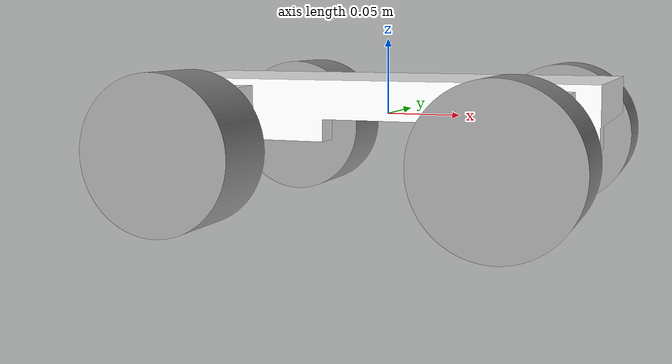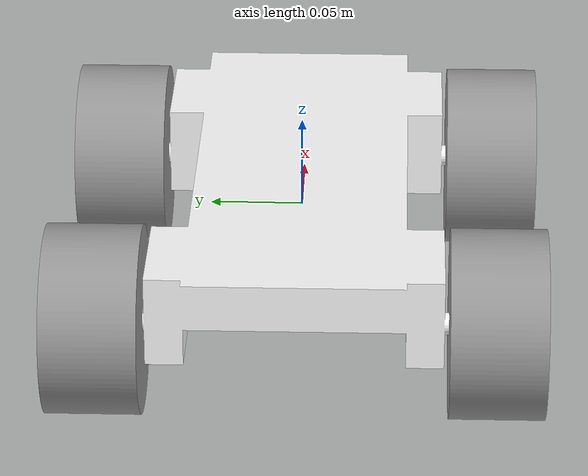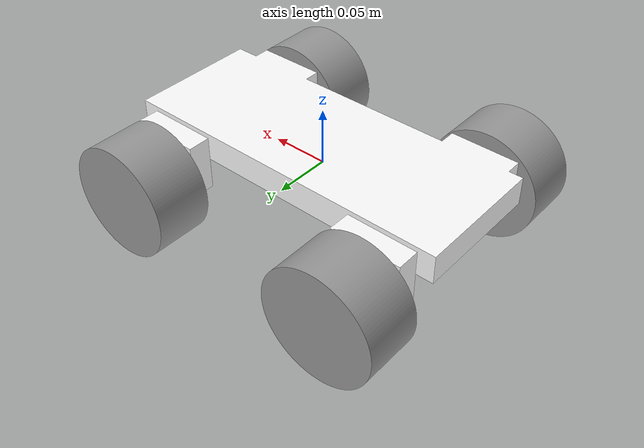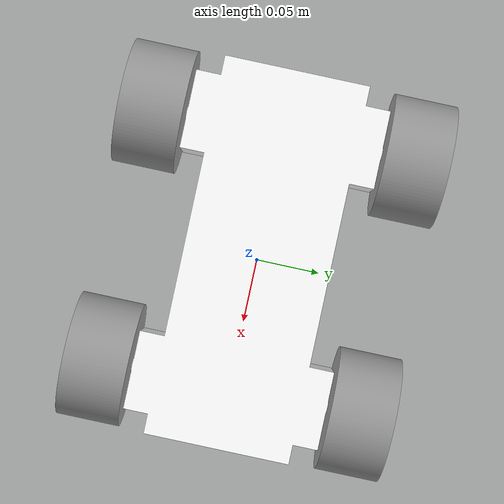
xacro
<?xml version="1.0"?>
<robot xmlns:xacro="http://www.ros.org/wiki/xacro">

    <xacro:macro name="inertial_cylinder" params="mass length radius *origin">
        <inertial>
            <xacro:insert_block name="origin"/>
            <mass value="${mass}" />
            <inertia ixx="${(1/12) * mass * (3*radius*radius + length*length)}" ixy="0.0" ixz="0.0"
                    iyy="${(1/12) * mass * (3*radius*radius + length*length)}" iyz="0.0"
                    izz="${(1/2) * mass * (radius*radius)}" />
        </inertial>
    </xacro:macro>

    <xacro:property name="mesh_scale" value="0.001"/>

    <material name="chassis_material">
        <color rgba="1.0 1.0 1.0 1.0" />
    </material>

    <material name="wheel_material">
        <color rgba="0.6 0.6 0.6 1.0" />
    </material>

    <link name="base_link"/>

    <joint name="base_footprint_joint" type="fixed">
        <parent link="base_link"/>
        <child link="base_footprint"/>
        <origin xyz="0 0 0" rpy="0 0 0"/>
    </joint>

    <link name="base_footprint"/>

    <joint name="chassis_joint" type="fixed">
        <parent link="base_link"/>
        <child link="chassis"/>
        <origin xyz="0 0 0.0" rpy="0 0 ${-pi/2}"/>
    </joint>

    <link name="chassis">
        <inertial>
            <origin xyz="-7.066717348492194e-05 3.485618129802738e-05 0.00889428874586655" rpy="0 0 0"/>
            <mass value="2.985747783671821"/>
            <inertia ixx="0.025172" iyy="0.005971" izz="0.030362" ixy="-6e-06" iyz="2e-06" ixz="-2e-06"/>
        </inertial>
        <visual>
            <origin xyz="0 0 0" rpy="0 0 0"/>
            <geometry>
            <mesh filename="package://quac/meshes/base_link.stl" scale="${mesh_scale} ${mesh_scale} ${mesh_scale}"/>
            </geometry>
            <material name="chassis_material"/>
        </visual>
        <collision>
            <origin xyz="0 0 0" rpy="0 0 0"/>
            <geometry>
            <mesh filename="package://quac/meshes/base_link.stl" scale="${mesh_scale} ${mesh_scale} ${mesh_scale}"/>
            </geometry>
        </collision>
    </link>

    <gazebo reference="chassis">
        <material>Gazebo/White</material>
        <mu1>0.2</mu1>
        <mu2>0.2</mu2>
        <gravity>true</gravity>
    </gazebo>

    <xacro:macro name="wheel" params="name joint_origin_xyz link_xyz mesh">
        <joint name="${name}_joint" type="continuous">
            <origin xyz="${joint_origin_xyz}" rpy="0 0 0"/>
            <parent link="chassis"/>
            <child link="${name}"/>
            <axis xyz="-1.0 0.0 0.0"/>
        </joint>

        <link name="${name}">
            <inertial>
                <origin xyz="0 0 0" rpy="0 0 0"/>
                <mass value="1.0708903957924194"/>
                <inertia ixx="0.001339" iyy="0.000897" izz="0.000897" ixy="0.0" iyz="0.0" ixz="0.0"/>
            </inertial>
            <visual>
                <origin xyz="${link_xyz}" rpy="0 0 0"/>
                <geometry>
                    <mesh filename="${mesh}" scale="${mesh_scale} ${mesh_scale} ${mesh_scale}"/>
                </geometry>
                <material name="wheel_material"/>
            </visual>
            <collision>
                <origin xyz="${link_xyz}" rpy="0 0 0"/>
                <geometry>
                    <mesh filename="${mesh}" scale="${mesh_scale} ${mesh_scale} ${mesh_scale}"/>
                </geometry>
            </collision>

            <gazebo>
                <mu1>0.2</mu1>       <!-- lateral friction -->
                <mu2>0.8</mu2>       <!-- longitudinal friction -->
                <fdir1>1 0 0</fdir1> <!-- wheel forward direction -->
                <slip1>0.1</slip1>  <!-- longitudinal slip tolerance -->
                <slip2>0.5</slip2>  <!-- lateral slip tolerance -->
                <turning_surface>false</turning_surface> <!-- optional -->
            </gazebo>

        </link>

        <transmission name="${name}_trans">
            <type>transmission_interface/SimpleTransmission</type>
            <joint name="${name}_joint">
                <hardware_interface>velocity</hardware_interface>
            </joint>
            <actuator name="${name}_motor">
                <hardware_interface>velocity</hardware_interface>
                <mechanicalReduction>1</mechanicalReduction>
            </actuator>
        </transmission>

        <gazebo reference="${name}">
            <material>Gazebo/Black</material>
        </gazebo>
    </xacro:macro>

    <!-- Four wheels -->

    <xacro:wheel
        name="wheel_rear_right"
        joint_origin_xyz="0.105 -0.104 -0.0183"
        link_xyz="-0.105 0.104 0.0183"
        mesh="package://quac/meshes/wheel.stl"
        />

    <xacro:wheel
        name="wheel_front_right"
        joint_origin_xyz="0.105 0.104 -0.0183"
        link_xyz="-0.105 -0.104 0.0183"
        mesh="package://quac/meshes/wheel_2.stl"
        />
    <xacro:wheel
        name="wheel_front_left"
        joint_origin_xyz="-0.105 0.104 -0.0183"
        link_xyz="0.105 -0.104 0.0183"
        mesh="package://quac/meshes/wheel_3.stl"
        />
    <xacro:wheel
        name="wheel_rear_left"
        joint_origin_xyz="-0.105 -0.104 -0.0183"
        link_xyz="0.105 0.104 0.0183"
        mesh="package://quac/meshes/wheel_4.stl"
        />

</robot>
